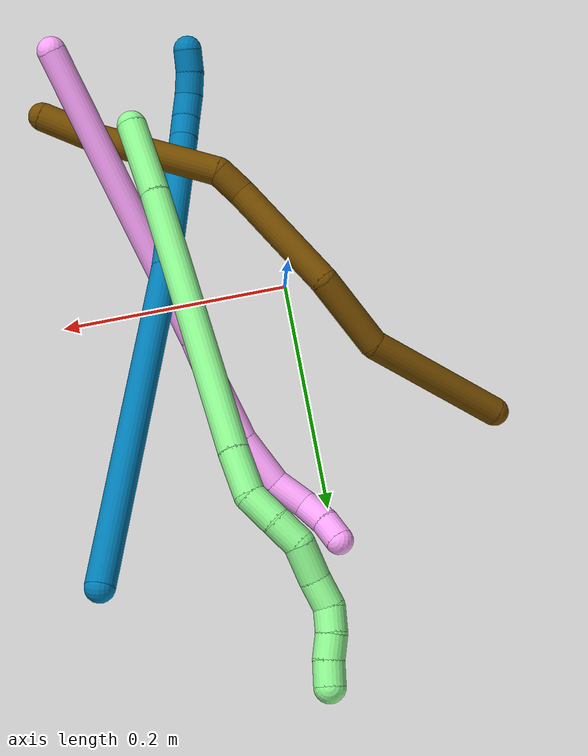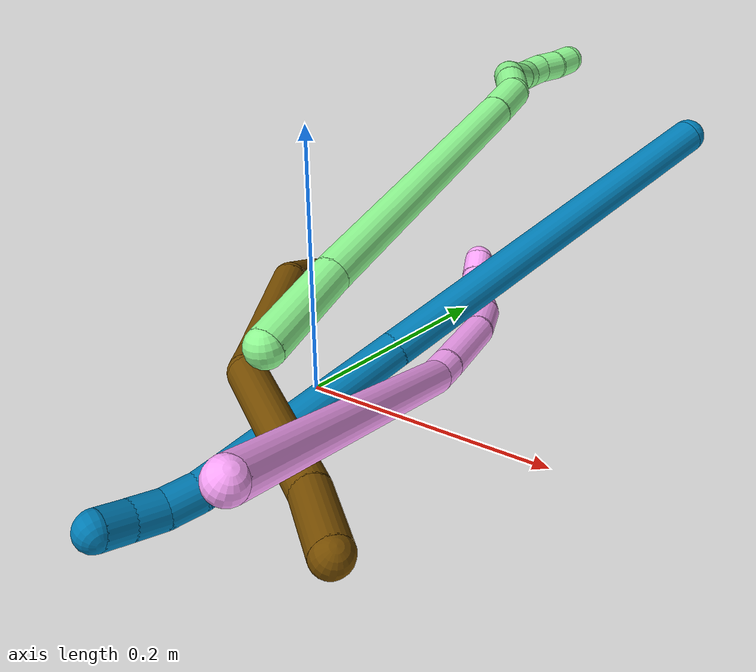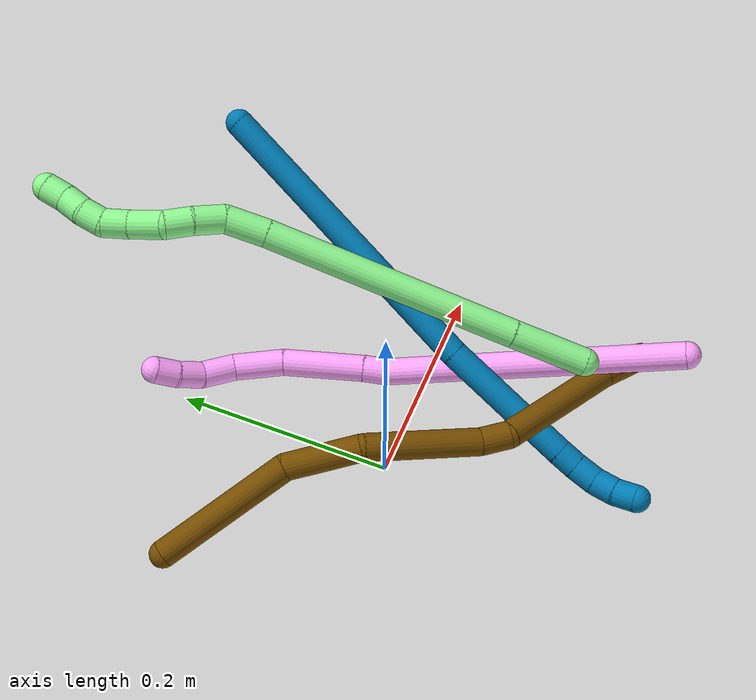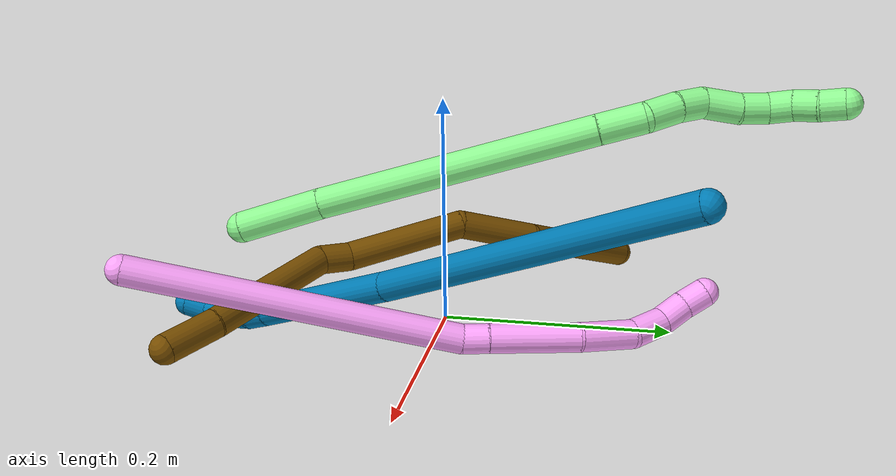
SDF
<sdf version="1.7">
 <world name="default">
  <model name="photoneo_s_sensor">
   <static>1</static>
   <pose>0 0 2 1.57079 1.57079 3.14159</pose>
   <link name="link">
    <inertial><mass>0.1</mass></inertial>
    <sensor name="sensor" type="depth">
     <update_rate>30</update_rate>
     <camera>
      <horizontal_fov>1.22</horizontal_fov>
      <image><width>1920</width><height>1200</height><format>B8G8R8</format></image>
      <clip><near>0.1</near><far>4</far></clip>
      <depth_camera><output>points</output></depth_camera>
     </camera>
     <plugin name="camera_plugin" filename="libgazebo_ros_depth_camera.so">
      <baseline>0.2</baseline>
      <alwaysOn>1</alwaysOn>
      <updateRate>0.0</updateRate>
      <cameraName>camera_ir</cameraName>
      <imageTopicName>/camera/color/image_raw</imageTopicName>
      <cameraInfoTopicName>/camera/color/camera_info</cameraInfoTopicName>
      <depthImageTopicName>/camera/depth/image_raw</depthImageTopicName>
      <depthImageCameraInfoTopicName>/camera/depth/camera_info</depthImageCameraInfoTopicName>
      <pointCloudTopicName>/camera/depth/points</pointCloudTopicName>
      <frameName>fr_optical</frameName>
      <pointCloudCutoff>0.1</pointCloudCutoff>
      <pointCloudCutoffMax>2.0</pointCloudCutoffMax>
      <distortionK1>0</distortionK1>
      <distortionK2>0</distortionK2>
      <distortionK3>0</distortionK3>
      <distortionT1>0</distortionT1>
      <distortionT2>0</distortionT2>
      <CxPrime>0</CxPrime>
      <Cx>0</Cx>
      <Cy>0</Cy>
      <focalLength>0</focalLength>
      <hackBaseline>0</hackBaseline>
     </plugin>
    </sensor>
   </link>
  </model>
  <model name="bin">
   <static>1</static>
   <link name="bottom">
    <collision name="collision-bottom">
     <pose>0 0 -0.01 0 -0 0</pose>
     <geometry><box><size>0.8 0.6 0.02</size></box></geometry>
     <surface>
      <friction><ode><mu>100</mu><mu2>100</mu2></ode></friction>
      <contact><collide_bitmask>65535</collide_bitmask></contact>
     </surface>
    </collision>
   </link>
   <link name="west_wall">
    <collision name="collision-west_wall">
     <pose>-0.41 0 0.1 0 -0 0</pose>
     <geometry><box><size>0.02 0.6 0.2</size></box></geometry>
     <surface>
      <friction><ode><mu>100</mu><mu2>100</mu2></ode></friction>
      <contact><collide_bitmask>65535</collide_bitmask></contact>
     </surface>
    </collision>
   </link>
   <link name="east_wall">
    <collision name="collision-east_wall">
     <pose>0.41 0 0.1 0 -0 0</pose>
     <geometry><box><size>0.02 0.6 0.2</size></box></geometry>
     <surface>
      <friction><ode><mu>100</mu><mu2>100</mu2></ode></friction>
      <contact><collide_bitmask>65535</collide_bitmask></contact>
     </surface>
    </collision>
   </link>
   <link name="south_wall">
    <collision name="collision-south_wall">
     <pose>0 -0.31 0.1 0 -0 0</pose>
     <geometry><box><size>0.8 0.02 0.2</size></box></geometry>
     <surface>
      <friction><ode><mu>100</mu><mu2>100</mu2></ode></friction>
      <contact><collide_bitmask>65535</collide_bitmask></contact>
     </surface>
    </collision>
   </link>
   <link name="north_wall">
    <collision name="collision-north_wall">
     <pose>0 0.31 0.1 0 -0 0</pose>
     <geometry><box><size>0.8 0.02 0.2</size></box></geometry>
     <surface>
      <friction><ode><mu>100</mu><mu2>100</mu2></ode></friction>
      <contact><collide_bitmask>65535</collide_bitmask></contact>
     </surface>
    </collision>
   </link>
  </model>
  <model name="4">
   <static>0</static>
   <link name="4">
    <collision name="collision-cylinder-e_1_1_4">
     <pose>-0.02738 0.111047 -0.077835 -2.18214 -0.199224 0.379577</pose>
     <geometry><cylinder><radius>0.0125</radius><length>0.276691</length></cylinder></geometry>
     <surface>
      <friction><ode><mu>1.16</mu><mu2>1.16</mu2><slip1>0</slip1><slip2>0</slip2></ode></friction>
      <contact><ode><kp>1e+06</kp><kd>1</kd><max_vel>0</max_vel><min_depth>0.001</min_depth></ode></contact>
     </surface>
    </collision>
    <visual name="visual-cylinder-e_1_1_4">
     <pose>-0.02738 0.111047 -0.077835 -2.18214 -0.199224 0.379577</pose>
     <geometry><cylinder><radius>0.0125</radius><length>0.276691</length></cylinder></geometry>
     <material><ambient>1 0.65098 0.996078 1</ambient></material>
    </visual>
    <collision name="collision-cylinder-e_2_4_5">
     <pose>-0.058345 0.231781 -0.159368 -1.93542 -0.332961 0.478646</pose>
     <geometry><cylinder><radius>0.0125</radius><length>0.021942</length></cylinder></geometry>
     <surface>
      <friction><ode><mu>1.16</mu><mu2>1.16</mu2><slip1>0</slip1><slip2>0</slip2></ode></friction>
      <contact><ode><kp>1e+06</kp><kd>1</kd><max_vel>0</max_vel><min_depth>0.001</min_depth></ode></contact>
     </surface>
    </collision>
    <visual name="visual-cylinder-e_2_4_5">
     <pose>-0.058345 0.231781 -0.159368 -1.93542 -0.332961 0.478646</pose>
     <geometry><cylinder><radius>0.0125</radius><length>0.021942</length></cylinder></geometry>
     <material><ambient>1 0.65098 0.996078 1</ambient></material>
    </visual>
    <collision name="collision-cylinder-e_3_5_6">
     <pose>-0.074972 0.273723 -0.178031 -2.00521 -0.351505 0.542606</pose>
     <geometry><cylinder><radius>0.0125</radius><length>0.075749</length></cylinder></geometry>
     <surface>
      <friction><ode><mu>1.16</mu><mu2>1.16</mu2><slip1>0</slip1><slip2>0</slip2></ode></friction>
      <contact><ode><kp>1e+06</kp><kd>1</kd><max_vel>0</max_vel><min_depth>0.001</min_depth></ode></contact>
     </surface>
    </collision>
    <visual name="visual-cylinder-e_3_5_6">
     <pose>-0.074972 0.273723 -0.178031 -2.00521 -0.351505 0.542606</pose>
     <geometry><cylinder><radius>0.0125</radius><length>0.075749</length></cylinder></geometry>
     <material><ambient>1 0.65098 0.996078 1</ambient></material>
    </visual>
    <collision name="collision-cylinder-e_4_6_7">
     <pose>-0.098681 0.323328 -0.204906 -2.17236 -0.469219 0.852299</pose>
     <geometry><cylinder><radius>0.0125</radius><length>0.047185</length></cylinder></geometry>
     <surface>
      <friction><ode><mu>1.16</mu><mu2>1.16</mu2><slip1>0</slip1><slip2>0</slip2></ode></friction>
      <contact><ode><kp>1e+06</kp><kd>1</kd><max_vel>0</max_vel><min_depth>0.001</min_depth></ode></contact>
     </surface>
    </collision>
    <visual name="visual-cylinder-e_4_6_7">
     <pose>-0.098681 0.323328 -0.204906 -2.17236 -0.469219 0.852299</pose>
     <geometry><cylinder><radius>0.0125</radius><length>0.047185</length></cylinder></geometry>
     <material><ambient>1 0.65098 0.996078 1</ambient></material>
    </visual>
    <collision name="collision-cylinder-e_5_7_8">
     <pose>-0.120857 0.349077 -0.223931 -2.27367 -0.807518 1.48957</pose>
     <geometry><cylinder><radius>0.0125</radius><length>0.031852</length></cylinder></geometry>
     <surface>
      <friction><ode><mu>1.16</mu><mu2>1.16</mu2><slip1>0</slip1><slip2>0</slip2></ode></friction>
      <contact><ode><kp>1e+06</kp><kd>1</kd><max_vel>0</max_vel><min_depth>0.001</min_depth></ode></contact>
     </surface>
    </collision>
    <visual name="visual-cylinder-e_5_7_8">
     <pose>-0.120857 0.349077 -0.223931 -2.27367 -0.807518 1.48957</pose>
     <geometry><cylinder><radius>0.0125</radius><length>0.031852</length></cylinder></geometry>
     <material><ambient>1 0.65098 0.996078 1</ambient></material>
    </visual>
    <collision name="collision-cylinder-e_6_8_9">
     <pose>-0.142379 0.364626 -0.232742 -1.8035 -0.937856 1.13965</pose>
     <geometry><cylinder><radius>0.0125</radius><length>0.024841</length></cylinder></geometry>
     <surface>
      <friction><ode><mu>1.16</mu><mu2>1.16</mu2><slip1>0</slip1><slip2>0</slip2></ode></friction>
      <contact><ode><kp>1e+06</kp><kd>1</kd><max_vel>0</max_vel><min_depth>0.001</min_depth></ode></contact>
     </surface>
    </collision>
    <visual name="visual-cylinder-e_6_8_9">
     <pose>-0.142379 0.364626 -0.232742 -1.8035 -0.937856 1.13965</pose>
     <geometry><cylinder><radius>0.0125</radius><length>0.024841</length></cylinder></geometry>
     <material><ambient>1 0.65098 0.996078 1</ambient></material>
    </visual>
    <collision name="collision-cylinder-e_7_9_2">
     <pose>-0.160056 0.379462 -0.23504 -1.64917 -0.782271 0.839112</pose>
     <geometry><cylinder><radius>0.0125</radius><length>0.021741</length></cylinder></geometry>
     <surface>
      <friction><ode><mu>1.16</mu><mu2>1.16</mu2><slip1>0</slip1><slip2>0</slip2></ode></friction>
      <contact><ode><kp>1e+06</kp><kd>1</kd><max_vel>0</max_vel><min_depth>0.001</min_depth></ode></contact>
     </surface>
    </collision>
    <visual name="visual-cylinder-e_7_9_2">
     <pose>-0.160056 0.379462 -0.23504 -1.64917 -0.782271 0.839112</pose>
     <geometry><cylinder><radius>0.0125</radius><length>0.021741</length></cylinder></geometry>
     <material><ambient>1 0.65098 0.996078 1</ambient></material>
    </visual>
    <collision name="collision-sphere-2">
     <pose>-0.167718 0.387149 -0.235644 0 -0 0</pose>
     <geometry><sphere><radius>0.0125</radius></sphere></geometry>
     <surface>
      <friction><ode><mu>1.16</mu><mu2>1.16</mu2><slip1>0</slip1><slip2>0</slip2></ode></friction>
      <contact><ode><kp>1e+06</kp><kd>1</kd><max_vel>0</max_vel><min_depth>0.001</min_depth></ode></contact>
     </surface>
    </collision>
    <visual name="visual-sphere-2">
     <pose>-0.167718 0.387149 -0.235644 0 -0 0</pose>
     <geometry><sphere><radius>0.0125</radius></sphere></geometry>
     <material><ambient>1 0.65098 0.996078 1</ambient></material>
    </visual>
    <collision name="collision-sphere-9">
     <pose>-0.152393 0.371775 -0.234436 0 -0 0</pose>
     <geometry><sphere><radius>0.0125</radius></sphere></geometry>
     <surface>
      <friction><ode><mu>1.16</mu><mu2>1.16</mu2><slip1>0</slip1><slip2>0</slip2></ode></friction>
      <contact><ode><kp>1e+06</kp><kd>1</kd><max_vel>0</max_vel><min_depth>0.001</min_depth></ode></contact>
     </surface>
    </collision>
    <visual name="visual-sphere-9">
     <pose>-0.152393 0.371775 -0.234436 0 -0 0</pose>
     <geometry><sphere><radius>0.0125</radius></sphere></geometry>
     <material><ambient>1 0.65098 0.996078 1</ambient></material>
    </visual>
    <collision name="collision-sphere-4">
     <pose>-0.05476 0.222094 -0.155671 0 -0 0</pose>
     <geometry><sphere><radius>0.0125</radius></sphere></geometry>
     <surface>
      <friction><ode><mu>1.16</mu><mu2>1.16</mu2><slip1>0</slip1><slip2>0</slip2></ode></friction>
      <contact><ode><kp>1e+06</kp><kd>1</kd><max_vel>0</max_vel><min_depth>0.001</min_depth></ode></contact>
     </surface>
    </collision>
    <visual name="visual-sphere-4">
     <pose>-0.05476 0.222094 -0.155671 0 -0 0</pose>
     <geometry><sphere><radius>0.0125</radius></sphere></geometry>
     <material><ambient>1 0.65098 0.996078 1</ambient></material>
    </visual>
    <collision name="collision-sphere-1">
     <geometry><sphere><radius>0.0125</radius></sphere></geometry>
     <surface>
      <friction><ode><mu>1.16</mu><mu2>1.16</mu2><slip1>0</slip1><slip2>0</slip2></ode></friction>
      <contact><ode><kp>1e+06</kp><kd>1</kd><max_vel>0</max_vel><min_depth>0.001</min_depth></ode></contact>
     </surface>
    </collision>
    <visual name="visual-sphere-1">
     <geometry><sphere><radius>0.0125</radius></sphere></geometry>
     <material><ambient>1 0.65098 0.996078 1</ambient></material>
    </visual>
    <collision name="collision-sphere-8">
     <pose>-0.132364 0.357477 -0.231048 0 -0 0</pose>
     <geometry><sphere><radius>0.0125</radius></sphere></geometry>
     <surface>
      <friction><ode><mu>1.16</mu><mu2>1.16</mu2><slip1>0</slip1><slip2>0</slip2></ode></friction>
      <contact><ode><kp>1e+06</kp><kd>1</kd><max_vel>0</max_vel><min_depth>0.001</min_depth></ode></contact>
     </surface>
    </collision>
    <visual name="visual-sphere-8">
     <pose>-0.132364 0.357477 -0.231048 0 -0 0</pose>
     <geometry><sphere><radius>0.0125</radius></sphere></geometry>
     <material><ambient>1 0.65098 0.996078 1</ambient></material>
    </visual>
    <collision name="collision-sphere-5">
     <pose>-0.061931 0.241467 -0.163065 0 -0 0</pose>
     <geometry><sphere><radius>0.0125</radius></sphere></geometry>
     <surface>
      <friction><ode><mu>1.16</mu><mu2>1.16</mu2><slip1>0</slip1><slip2>0</slip2></ode></friction>
      <contact><ode><kp>1e+06</kp><kd>1</kd><max_vel>0</max_vel><min_depth>0.001</min_depth></ode></contact>
     </surface>
    </collision>
    <visual name="visual-sphere-5">
     <pose>-0.061931 0.241467 -0.163065 0 -0 0</pose>
     <geometry><sphere><radius>0.0125</radius></sphere></geometry>
     <material><ambient>1 0.65098 0.996078 1</ambient></material>
    </visual>
    <collision name="collision-sphere-6">
     <pose>-0.088012 0.30598 -0.192997 0 -0 0</pose>
     <geometry><sphere><radius>0.0125</radius></sphere></geometry>
     <surface>
      <friction><ode><mu>1.16</mu><mu2>1.16</mu2><slip1>0</slip1><slip2>0</slip2></ode></friction>
      <contact><ode><kp>1e+06</kp><kd>1</kd><max_vel>0</max_vel><min_depth>0.001</min_depth></ode></contact>
     </surface>
    </collision>
    <visual name="visual-sphere-6">
     <pose>-0.088012 0.30598 -0.192997 0 -0 0</pose>
     <geometry><sphere><radius>0.0125</radius></sphere></geometry>
     <material><ambient>1 0.65098 0.996078 1</ambient></material>
    </visual>
    <collision name="collision-sphere-7">
     <pose>-0.109349 0.340677 -0.216815 0 -0 0</pose>
     <geometry><sphere><radius>0.0125</radius></sphere></geometry>
     <surface>
      <friction><ode><mu>1.16</mu><mu2>1.16</mu2><slip1>0</slip1><slip2>0</slip2></ode></friction>
      <contact><ode><kp>1e+06</kp><kd>1</kd><max_vel>0</max_vel><min_depth>0.001</min_depth></ode></contact>
     </surface>
    </collision>
    <visual name="visual-sphere-7">
     <pose>-0.109349 0.340677 -0.216815 0 -0 0</pose>
     <geometry><sphere><radius>0.0125</radius></sphere></geometry>
     <material><ambient>1 0.65098 0.996078 1</ambient></material>
    </visual>
    <inertial>
     <pose>-0.060114 0.200456 -0.132423 0 -0 0</pose>
     <mass>0.5</mass>
     <inertia>
      <ixx>0.002321</ixx>
      <ixy>0</ixy>
      <ixz>0</ixz>
      <iyy>-0.000138</iyy>
      <iyz>0</iyz>
      <izz>-0.001115</izz>
     </inertia>
    </inertial>
   </link>
   <pose>0.15885 -0.225127 0.090875 0.115509 0.638384 -0.197308</pose>
  </model>
  <model name="9">
   <static>0</static>
   <link name="9">
    <collision name="collision-cylinder-e_1_1_4">
     <pose>0.027849 -0.141025 0.005158 1.53424 0.194837 0.187883</pose>
     <geometry><cylinder><radius>0.0125</radius><length>0.287682</length></cylinder></geometry>
     <surface>
      <friction><ode><mu>1.16</mu><mu2>1.16</mu2><slip1>0</slip1><slip2>0</slip2></ode></friction>
      <contact><ode><kp>1e+06</kp><kd>1</kd><max_vel>0</max_vel><min_depth>0.001</min_depth></ode></contact>
     </surface>
    </collision>
    <visual name="visual-cylinder-e_1_1_4">
     <pose>0.027849 -0.141025 0.005158 1.53424 0.194837 0.187883</pose>
     <geometry><cylinder><radius>0.0125</radius><length>0.287682</length></cylinder></geometry>
     <material><ambient>0 0.490196 0.709804 1</ambient></material>
    </visual>
    <collision name="collision-cylinder-e_2_4_5">
     <pose>0.064648 -0.34578 0.015476 1.49002 0.13909 0.128316</pose>
     <geometry><cylinder><radius>0.0125</radius><length>0.129124</length></cylinder></geometry>
     <surface>
      <friction><ode><mu>1.16</mu><mu2>1.16</mu2><slip1>0</slip1><slip2>0</slip2></ode></friction>
      <contact><ode><kp>1e+06</kp><kd>1</kd><max_vel>0</max_vel><min_depth>0.001</min_depth></ode></contact>
     </surface>
    </collision>
    <visual name="visual-cylinder-e_2_4_5">
     <pose>0.064648 -0.34578 0.015476 1.49002 0.13909 0.128316</pose>
     <geometry><cylinder><radius>0.0125</radius><length>0.129124</length></cylinder></geometry>
     <material><ambient>0 0.490196 0.709804 1</ambient></material>
    </visual>
    <collision name="collision-cylinder-e_3_5_6">
     <pose>0.074688 -0.419486 0.021568 1.47753 0.108272 0.098633</pose>
     <geometry><cylinder><radius>0.0125</radius><length>0.020157</length></cylinder></geometry>
     <surface>
      <friction><ode><mu>1.16</mu><mu2>1.16</mu2><slip1>0</slip1><slip2>0</slip2></ode></friction>
      <contact><ode><kp>1e+06</kp><kd>1</kd><max_vel>0</max_vel><min_depth>0.001</min_depth></ode></contact>
     </surface>
    </collision>
    <visual name="visual-cylinder-e_3_5_6">
     <pose>0.074688 -0.419486 0.021568 1.47753 0.108272 0.098633</pose>
     <geometry><cylinder><radius>0.0125</radius><length>0.020157</length></cylinder></geometry>
     <material><ambient>0 0.490196 0.709804 1</ambient></material>
    </visual>
    <collision name="collision-cylinder-e_4_6_7">
     <pose>0.075077 -0.440481 0.022622 1.55977 -0.063429 -0.062734</pose>
     <geometry><cylinder><radius>0.0125</radius><length>0.022085</length></cylinder></geometry>
     <surface>
      <friction><ode><mu>1.16</mu><mu2>1.16</mu2><slip1>0</slip1><slip2>0</slip2></ode></friction>
      <contact><ode><kp>1e+06</kp><kd>1</kd><max_vel>0</max_vel><min_depth>0.001</min_depth></ode></contact>
     </surface>
    </collision>
    <visual name="visual-cylinder-e_4_6_7">
     <pose>0.075077 -0.440481 0.022622 1.55977 -0.063429 -0.062734</pose>
     <geometry><cylinder><radius>0.0125</radius><length>0.022085</length></cylinder></geometry>
     <material><ambient>0 0.490196 0.709804 1</ambient></material>
    </visual>
    <collision name="collision-cylinder-e_5_7_8">
     <pose>0.071284 -0.46143 0.022785 1.56665 -0.301969 -0.300738</pose>
     <geometry><cylinder><radius>0.0125</radius><length>0.0208</length></cylinder></geometry>
     <surface>
      <friction><ode><mu>1.16</mu><mu2>1.16</mu2><slip1>0</slip1><slip2>0</slip2></ode></friction>
      <contact><ode><kp>1e+06</kp><kd>1</kd><max_vel>0</max_vel><min_depth>0.001</min_depth></ode></contact>
     </surface>
    </collision>
    <visual name="visual-cylinder-e_5_7_8">
     <pose>0.071284 -0.46143 0.022785 1.56665 -0.301969 -0.300738</pose>
     <geometry><cylinder><radius>0.0125</radius><length>0.0208</length></cylinder></geometry>
     <material><ambient>0 0.490196 0.709804 1</ambient></material>
    </visual>
    <collision name="collision-cylinder-e_6_8_2">
     <pose>0.063796 -0.480347 0.024027 1.43796 -0.451426 -0.396681</pose>
     <geometry><cylinder><radius>0.0125</radius><length>0.020153</length></cylinder></geometry>
     <surface>
      <friction><ode><mu>1.16</mu><mu2>1.16</mu2><slip1>0</slip1><slip2>0</slip2></ode></friction>
      <contact><ode><kp>1e+06</kp><kd>1</kd><max_vel>0</max_vel><min_depth>0.001</min_depth></ode></contact>
     </surface>
    </collision>
    <visual name="visual-cylinder-e_6_8_2">
     <pose>0.063796 -0.480347 0.024027 1.43796 -0.451426 -0.396681</pose>
     <geometry><cylinder><radius>0.0125</radius><length>0.020153</length></cylinder></geometry>
     <material><ambient>0 0.490196 0.709804 1</ambient></material>
    </visual>
    <collision name="collision-sphere-2">
     <pose>0.0594 -0.489334 0.025228 0 -0 0</pose>
     <geometry><sphere><radius>0.0125</radius></sphere></geometry>
     <surface>
      <friction><ode><mu>1.16</mu><mu2>1.16</mu2><slip1>0</slip1><slip2>0</slip2></ode></friction>
      <contact><ode><kp>1e+06</kp><kd>1</kd><max_vel>0</max_vel><min_depth>0.001</min_depth></ode></contact>
     </surface>
    </collision>
    <visual name="visual-sphere-2">
     <pose>0.0594 -0.489334 0.025228 0 -0 0</pose>
     <geometry><sphere><radius>0.0125</radius></sphere></geometry>
     <material><ambient>0 0.490196 0.709804 1</ambient></material>
    </visual>
    <collision name="collision-sphere-4">
     <pose>0.055697 -0.28205 0.010317 0 -0 0</pose>
     <geometry><sphere><radius>0.0125</radius></sphere></geometry>
     <surface>
      <friction><ode><mu>1.16</mu><mu2>1.16</mu2><slip1>0</slip1><slip2>0</slip2></ode></friction>
      <contact><ode><kp>1e+06</kp><kd>1</kd><max_vel>0</max_vel><min_depth>0.001</min_depth></ode></contact>
     </surface>
    </collision>
    <visual name="visual-sphere-4">
     <pose>0.055697 -0.28205 0.010317 0 -0 0</pose>
     <geometry><sphere><radius>0.0125</radius></sphere></geometry>
     <material><ambient>0 0.490196 0.709804 1</ambient></material>
    </visual>
    <collision name="collision-sphere-1">
     <geometry><sphere><radius>0.0125</radius></sphere></geometry>
     <surface>
      <friction><ode><mu>1.16</mu><mu2>1.16</mu2><slip1>0</slip1><slip2>0</slip2></ode></friction>
      <contact><ode><kp>1e+06</kp><kd>1</kd><max_vel>0</max_vel><min_depth>0.001</min_depth></ode></contact>
     </surface>
    </collision>
    <visual name="visual-sphere-1">
     <geometry><sphere><radius>0.0125</radius></sphere></geometry>
     <material><ambient>0 0.490196 0.709804 1</ambient></material>
    </visual>
    <collision name="collision-sphere-8">
     <pose>0.068191 -0.47136 0.022826 0 -0 0</pose>
     <geometry><sphere><radius>0.0125</radius></sphere></geometry>
     <surface>
      <friction><ode><mu>1.16</mu><mu2>1.16</mu2><slip1>0</slip1><slip2>0</slip2></ode></friction>
      <contact><ode><kp>1e+06</kp><kd>1</kd><max_vel>0</max_vel><min_depth>0.001</min_depth></ode></contact>
     </surface>
    </collision>
    <visual name="visual-sphere-8">
     <pose>0.068191 -0.47136 0.022826 0 -0 0</pose>
     <geometry><sphere><radius>0.0125</radius></sphere></geometry>
     <material><ambient>0 0.490196 0.709804 1</ambient></material>
    </visual>
    <collision name="collision-sphere-5">
     <pose>0.073599 -0.40951 0.020635 0 -0 0</pose>
     <geometry><sphere><radius>0.0125</radius></sphere></geometry>
     <surface>
      <friction><ode><mu>1.16</mu><mu2>1.16</mu2><slip1>0</slip1><slip2>0</slip2></ode></friction>
      <contact><ode><kp>1e+06</kp><kd>1</kd><max_vel>0</max_vel><min_depth>0.001</min_depth></ode></contact>
     </surface>
    </collision>
    <visual name="visual-sphere-5">
     <pose>0.073599 -0.40951 0.020635 0 -0 0</pose>
     <geometry><sphere><radius>0.0125</radius></sphere></geometry>
     <material><ambient>0 0.490196 0.709804 1</ambient></material>
    </visual>
    <collision name="collision-sphere-6">
     <pose>0.075777 -0.429462 0.022501 0 -0 0</pose>
     <geometry><sphere><radius>0.0125</radius></sphere></geometry>
     <surface>
      <friction><ode><mu>1.16</mu><mu2>1.16</mu2><slip1>0</slip1><slip2>0</slip2></ode></friction>
      <contact><ode><kp>1e+06</kp><kd>1</kd><max_vel>0</max_vel><min_depth>0.001</min_depth></ode></contact>
     </surface>
    </collision>
    <visual name="visual-sphere-6">
     <pose>0.075777 -0.429462 0.022501 0 -0 0</pose>
     <geometry><sphere><radius>0.0125</radius></sphere></geometry>
     <material><ambient>0 0.490196 0.709804 1</ambient></material>
    </visual>
    <collision name="collision-sphere-7">
     <pose>0.074377 -0.451501 0.022744 0 -0 0</pose>
     <geometry><sphere><radius>0.0125</radius></sphere></geometry>
     <surface>
      <friction><ode><mu>1.16</mu><mu2>1.16</mu2><slip1>0</slip1><slip2>0</slip2></ode></friction>
      <contact><ode><kp>1e+06</kp><kd>1</kd><max_vel>0</max_vel><min_depth>0.001</min_depth></ode></contact>
     </surface>
    </collision>
    <visual name="visual-sphere-7">
     <pose>0.074377 -0.451501 0.022744 0 -0 0</pose>
     <geometry><sphere><radius>0.0125</radius></sphere></geometry>
     <material><ambient>0 0.490196 0.709804 1</ambient></material>
    </visual>
    <inertial>
     <pose>0.044582 -0.24536 0.010749 0 -0 0</pose>
     <mass>0.5</mass>
     <inertia>
      <ixx>0.002503</ixx>
      <ixy>0</ixy>
      <ixz>0</ixz>
      <iyy>0.000512</iyy>
      <iyz>0</iyz>
      <izz>0.001735</izz>
     </inertia>
    </inertial>
   </link>
   <pose>0.190958 0.220507 0.178585 2.52763 1.21559 2.22577</pose>
  </model>
  <model name="12">
   <static>0</static>
   <link name="12">
    <collision name="collision-cylinder-e_1_1_4">
     <pose>0.000524 0.020255 0.011421 -1.05736 0.022538 -0.013166</pose>
     <geometry><cylinder><radius>0.0125</radius><length>0.046517</length></cylinder></geometry>
     <surface>
      <friction><ode><mu>1.16</mu><mu2>1.16</mu2><slip1>0</slip1><slip2>0</slip2></ode></friction>
      <contact><ode><kp>1e+06</kp><kd>1</kd><max_vel>0</max_vel><min_depth>0.001</min_depth></ode></contact>
     </surface>
    </collision>
    <visual name="visual-cylinder-e_1_1_4">
     <pose>0.000524 0.020255 0.011421 -1.05736 0.022538 -0.013166</pose>
     <geometry><cylinder><radius>0.0125</radius><length>0.046517</length></cylinder></geometry>
     <material><ambient>0.466667 0.301961 0 1</ambient></material>
    </visual>
    <collision name="collision-cylinder-e_2_4_5">
     <pose>0.009368 0.091777 0.052681 -1.04371 0.139346 -0.080214</pose>
     <geometry><cylinder><radius>0.0125</radius><length>0.119798</length></cylinder></geometry>
     <surface>
      <friction><ode><mu>1.16</mu><mu2>1.16</mu2><slip1>0</slip1><slip2>0</slip2></ode></friction>
      <contact><ode><kp>1e+06</kp><kd>1</kd><max_vel>0</max_vel><min_depth>0.001</min_depth></ode></contact>
     </surface>
    </collision>
    <visual name="visual-cylinder-e_2_4_5">
     <pose>0.009368 0.091777 0.052681 -1.04371 0.139346 -0.080214</pose>
     <geometry><cylinder><radius>0.0125</radius><length>0.119798</length></cylinder></geometry>
     <material><ambient>0.466667 0.301961 0 1</ambient></material>
    </visual>
    <collision name="collision-cylinder-e_3_5_6">
     <pose>0.01327 0.152849 0.09044 -0.891304 -0.337095 0.162217</pose>
     <geometry><cylinder><radius>0.0125</radius><length>0.026713</length></cylinder></geometry>
     <surface>
      <friction><ode><mu>1.16</mu><mu2>1.16</mu2><slip1>0</slip1><slip2>0</slip2></ode></friction>
      <contact><ode><kp>1e+06</kp><kd>1</kd><max_vel>0</max_vel><min_depth>0.001</min_depth></ode></contact>
     </surface>
    </collision>
    <visual name="visual-cylinder-e_3_5_6">
     <pose>0.01327 0.152849 0.09044 -0.891304 -0.337095 0.162217</pose>
     <geometry><cylinder><radius>0.0125</radius><length>0.026713</length></cylinder></geometry>
     <material><ambient>0.466667 0.301961 0 1</ambient></material>
    </visual>
    <collision name="collision-cylinder-e_4_6_7">
     <pose>-0.011149 0.206741 0.11916 -1.12999 -0.389367 0.248706</pose>
     <geometry><cylinder><radius>0.0125</radius><length>0.10538</length></cylinder></geometry>
     <surface>
      <friction><ode><mu>1.16</mu><mu2>1.16</mu2><slip1>0</slip1><slip2>0</slip2></ode></friction>
      <contact><ode><kp>1e+06</kp><kd>1</kd><max_vel>0</max_vel><min_depth>0.001</min_depth></ode></contact>
     </surface>
    </collision>
    <visual name="visual-cylinder-e_4_6_7">
     <pose>-0.011149 0.206741 0.11916 -1.12999 -0.389367 0.248706</pose>
     <geometry><cylinder><radius>0.0125</radius><length>0.10538</length></cylinder></geometry>
     <material><ambient>0.466667 0.301961 0 1</ambient></material>
    </visual>
    <collision name="collision-cylinder-e_5_7_8">
     <pose>-0.047592 0.269706 0.165142 -0.643269 -0.481411 0.163216</pose>
     <geometry><cylinder><radius>0.0125</radius><length>0.071019</length></cylinder></geometry>
     <surface>
      <friction><ode><mu>1.16</mu><mu2>1.16</mu2><slip1>0</slip1><slip2>0</slip2></ode></friction>
      <contact><ode><kp>1e+06</kp><kd>1</kd><max_vel>0</max_vel><min_depth>0.001</min_depth></ode></contact>
     </surface>
    </collision>
    <visual name="visual-cylinder-e_5_7_8">
     <pose>-0.047592 0.269706 0.165142 -0.643269 -0.481411 0.163216</pose>
     <geometry><cylinder><radius>0.0125</radius><length>0.071019</length></cylinder></geometry>
     <material><ambient>0.466667 0.301961 0 1</ambient></material>
    </visual>
    <collision name="collision-cylinder-e_6_8_2">
     <pose>-0.07028 0.322895 0.245516 -0.556211 -0.095811 0.027374</pose>
     <geometry><cylinder><radius>0.0125</radius><length>0.130572</length></cylinder></geometry>
     <surface>
      <friction><ode><mu>1.16</mu><mu2>1.16</mu2><slip1>0</slip1><slip2>0</slip2></ode></friction>
      <contact><ode><kp>1e+06</kp><kd>1</kd><max_vel>0</max_vel><min_depth>0.001</min_depth></ode></contact>
     </surface>
    </collision>
    <visual name="visual-cylinder-e_6_8_2">
     <pose>-0.07028 0.322895 0.245516 -0.556211 -0.095811 0.027374</pose>
     <geometry><cylinder><radius>0.0125</radius><length>0.130572</length></cylinder></geometry>
     <material><ambient>0.466667 0.301961 0 1</ambient></material>
    </visual>
    <collision name="collision-sphere-2">
     <pose>-0.076525 0.357206 0.300706 0 -0 0</pose>
     <geometry><sphere><radius>0.0125</radius></sphere></geometry>
     <surface>
      <friction><ode><mu>1.16</mu><mu2>1.16</mu2><slip1>0</slip1><slip2>0</slip2></ode></friction>
      <contact><ode><kp>1e+06</kp><kd>1</kd><max_vel>0</max_vel><min_depth>0.001</min_depth></ode></contact>
     </surface>
    </collision>
    <visual name="visual-sphere-2">
     <pose>-0.076525 0.357206 0.300706 0 -0 0</pose>
     <geometry><sphere><radius>0.0125</radius></sphere></geometry>
     <material><ambient>0.466667 0.301961 0 1</ambient></material>
    </visual>
    <collision name="collision-sphere-4">
     <pose>0.001048 0.040509 0.022842 0 -0 0</pose>
     <geometry><sphere><radius>0.0125</radius></sphere></geometry>
     <surface>
      <friction><ode><mu>1.16</mu><mu2>1.16</mu2><slip1>0</slip1><slip2>0</slip2></ode></friction>
      <contact><ode><kp>1e+06</kp><kd>1</kd><max_vel>0</max_vel><min_depth>0.001</min_depth></ode></contact>
     </surface>
    </collision>
    <visual name="visual-sphere-4">
     <pose>0.001048 0.040509 0.022842 0 -0 0</pose>
     <geometry><sphere><radius>0.0125</radius></sphere></geometry>
     <material><ambient>0.466667 0.301961 0 1</ambient></material>
    </visual>
    <collision name="collision-sphere-1">
     <geometry><sphere><radius>0.0125</radius></sphere></geometry>
     <surface>
      <friction><ode><mu>1.16</mu><mu2>1.16</mu2><slip1>0</slip1><slip2>0</slip2></ode></friction>
      <contact><ode><kp>1e+06</kp><kd>1</kd><max_vel>0</max_vel><min_depth>0.001</min_depth></ode></contact>
     </surface>
    </collision>
    <visual name="visual-sphere-1">
     <geometry><sphere><radius>0.0125</radius></sphere></geometry>
     <material><ambient>0.466667 0.301961 0 1</ambient></material>
    </visual>
    <collision name="collision-sphere-8">
     <pose>-0.064034 0.288584 0.190325 0 -0 0</pose>
     <geometry><sphere><radius>0.0125</radius></sphere></geometry>
     <surface>
      <friction><ode><mu>1.16</mu><mu2>1.16</mu2><slip1>0</slip1><slip2>0</slip2></ode></friction>
      <contact><ode><kp>1e+06</kp><kd>1</kd><max_vel>0</max_vel><min_depth>0.001</min_depth></ode></contact>
     </surface>
    </collision>
    <visual name="visual-sphere-8">
     <pose>-0.064034 0.288584 0.190325 0 -0 0</pose>
     <geometry><sphere><radius>0.0125</radius></sphere></geometry>
     <material><ambient>0.466667 0.301961 0 1</ambient></material>
    </visual>
    <collision name="collision-sphere-5">
     <pose>0.017688 0.143044 0.082519 0 -0 0</pose>
     <geometry><sphere><radius>0.0125</radius></sphere></geometry>
     <surface>
      <friction><ode><mu>1.16</mu><mu2>1.16</mu2><slip1>0</slip1><slip2>0</slip2></ode></friction>
      <contact><ode><kp>1e+06</kp><kd>1</kd><max_vel>0</max_vel><min_depth>0.001</min_depth></ode></contact>
     </surface>
    </collision>
    <visual name="visual-sphere-5">
     <pose>0.017688 0.143044 0.082519 0 -0 0</pose>
     <geometry><sphere><radius>0.0125</radius></sphere></geometry>
     <material><ambient>0.466667 0.301961 0 1</ambient></material>
    </visual>
    <collision name="collision-sphere-6">
     <pose>0.008852 0.162655 0.098361 0 -0 0</pose>
     <geometry><sphere><radius>0.0125</radius></sphere></geometry>
     <surface>
      <friction><ode><mu>1.16</mu><mu2>1.16</mu2><slip1>0</slip1><slip2>0</slip2></ode></friction>
      <contact><ode><kp>1e+06</kp><kd>1</kd><max_vel>0</max_vel><min_depth>0.001</min_depth></ode></contact>
     </surface>
    </collision>
    <visual name="visual-sphere-6">
     <pose>0.008852 0.162655 0.098361 0 -0 0</pose>
     <geometry><sphere><radius>0.0125</radius></sphere></geometry>
     <material><ambient>0.466667 0.301961 0 1</ambient></material>
    </visual>
    <collision name="collision-sphere-7">
     <pose>-0.03115 0.250827 0.139958 0 -0 0</pose>
     <geometry><sphere><radius>0.0125</radius></sphere></geometry>
     <surface>
      <friction><ode><mu>1.16</mu><mu2>1.16</mu2><slip1>0</slip1><slip2>0</slip2></ode></friction>
      <contact><ode><kp>1e+06</kp><kd>1</kd><max_vel>0</max_vel><min_depth>0.001</min_depth></ode></contact>
     </surface>
    </collision>
    <visual name="visual-sphere-7">
     <pose>-0.03115 0.250827 0.139958 0 -0 0</pose>
     <geometry><sphere><radius>0.0125</radius></sphere></geometry>
     <material><ambient>0.466667 0.301961 0 1</ambient></material>
    </visual>
    <inertial>
     <pose>-0.024461 0.198243 0.131202 0 -0 0</pose>
     <mass>0.5</mass>
     <inertia>
      <ixx>0.000484</ixx>
      <ixy>0</ixy>
      <ixz>0</ixz>
      <iyy>0.000372</iyy>
      <iyz>0</iyz>
      <izz>-0.000265</izz>
     </inertia>
    </inertial>
   </link>
   <pose>0.18118 -0.183567 0.036577 2.47255 -0.121263 -2.17839</pose>
  </model>
  <model name="13">
   <static>0</static>
   <link name="13">
    <collision name="collision-cylinder-e_1_1_4">
     <pose>0.002126 0.033493 0.004769 -1.42938 0.06277 -0.054471</pose>
     <geometry><cylinder><radius>0.0125</radius><length>0.067796</length></cylinder></geometry>
     <surface>
      <friction><ode><mu>1.16</mu><mu2>1.16</mu2><slip1>0</slip1><slip2>0</slip2></ode></friction>
      <contact><ode><kp>1e+06</kp><kd>1</kd><max_vel>0</max_vel><min_depth>0.001</min_depth></ode></contact>
     </surface>
    </collision>
    <visual name="visual-cylinder-e_1_1_4">
     <pose>0.002126 0.033493 0.004769 -1.42938 0.06277 -0.054471</pose>
     <geometry><cylinder><radius>0.0125</radius><length>0.067796</length></cylinder></geometry>
     <material><ambient>0.564706 0.984314 0.572549 1</ambient></material>
    </visual>
    <collision name="collision-cylinder-e_2_4_5">
     <pose>0.01489 0.180003 0.022769 -1.45424 0.093214 -0.082949</pose>
     <geometry><cylinder><radius>0.0125</radius><length>0.228568</length></cylinder></geometry>
     <surface>
      <friction><ode><mu>1.16</mu><mu2>1.16</mu2><slip1>0</slip1><slip2>0</slip2></ode></friction>
      <contact><ode><kp>1e+06</kp><kd>1</kd><max_vel>0</max_vel><min_depth>0.001</min_depth></ode></contact>
     </surface>
    </collision>
    <visual name="visual-cylinder-e_2_4_5">
     <pose>0.01489 0.180003 0.022769 -1.45424 0.093214 -0.082949</pose>
     <geometry><cylinder><radius>0.0125</radius><length>0.228568</length></cylinder></geometry>
     <material><ambient>0.564706 0.984314 0.572549 1</ambient></material>
    </visual>
    <collision name="collision-cylinder-e_3_5_6">
     <pose>0.026343 0.311682 0.037764 -1.47666 0.043474 -0.039564</pose>
     <geometry><cylinder><radius>0.0125</radius><length>0.037529</length></cylinder></geometry>
     <surface>
      <friction><ode><mu>1.16</mu><mu2>1.16</mu2><slip1>0</slip1><slip2>0</slip2></ode></friction>
      <contact><ode><kp>1e+06</kp><kd>1</kd><max_vel>0</max_vel><min_depth>0.001</min_depth></ode></contact>
     </surface>
    </collision>
    <visual name="visual-cylinder-e_3_5_6">
     <pose>0.026343 0.311682 0.037764 -1.47666 0.043474 -0.039564</pose>
     <geometry><cylinder><radius>0.0125</radius><length>0.037529</length></cylinder></geometry>
     <material><ambient>0.564706 0.984314 0.572549 1</ambient></material>
    </visual>
    <collision name="collision-cylinder-e_4_6_7">
     <pose>0.021675 0.343311 0.039852 -1.54567 -0.399993 0.390319</pose>
     <geometry><cylinder><radius>0.0125</radius><length>0.028161</length></cylinder></geometry>
     <surface>
      <friction><ode><mu>1.16</mu><mu2>1.16</mu2><slip1>0</slip1><slip2>0</slip2></ode></friction>
      <contact><ode><kp>1e+06</kp><kd>1</kd><max_vel>0</max_vel><min_depth>0.001</min_depth></ode></contact>
     </surface>
    </collision>
    <visual name="visual-cylinder-e_4_6_7">
     <pose>0.021675 0.343311 0.039852 -1.54567 -0.399993 0.390319</pose>
     <geometry><cylinder><radius>0.0125</radius><length>0.028161</length></cylinder></geometry>
     <material><ambient>0.564706 0.984314 0.572549 1</ambient></material>
    </visual>
    <collision name="collision-cylinder-e_5_7_8">
     <pose>0.011403 0.367332 0.038981 -1.67864 -0.40668 0.451598</pose>
     <geometry><cylinder><radius>0.0125</radius><length>0.024216</length></cylinder></geometry>
     <surface>
      <friction><ode><mu>1.16</mu><mu2>1.16</mu2><slip1>0</slip1><slip2>0</slip2></ode></friction>
      <contact><ode><kp>1e+06</kp><kd>1</kd><max_vel>0</max_vel><min_depth>0.001</min_depth></ode></contact>
     </surface>
    </collision>
    <visual name="visual-cylinder-e_5_7_8">
     <pose>0.011403 0.367332 0.038981 -1.67864 -0.40668 0.451598</pose>
     <geometry><cylinder><radius>0.0125</radius><length>0.024216</length></cylinder></geometry>
     <material><ambient>0.564706 0.984314 0.572549 1</ambient></material>
    </visual>
    <collision name="collision-cylinder-e_6_8_9">
     <pose>0.006396 0.392604 0.032692 -1.91475 -0.014384 0.020431</pose>
     <geometry><cylinder><radius>0.0125</radius><length>0.030204</length></cylinder></geometry>
     <surface>
      <friction><ode><mu>1.16</mu><mu2>1.16</mu2><slip1>0</slip1><slip2>0</slip2></ode></friction>
      <contact><ode><kp>1e+06</kp><kd>1</kd><max_vel>0</max_vel><min_depth>0.001</min_depth></ode></contact>
     </surface>
    </collision>
    <visual name="visual-cylinder-e_6_8_9">
     <pose>0.006396 0.392604 0.032692 -1.91475 -0.014384 0.020431</pose>
     <geometry><cylinder><radius>0.0125</radius><length>0.030204</length></cylinder></geometry>
     <material><ambient>0.564706 0.984314 0.572549 1</ambient></material>
    </visual>
    <collision name="collision-cylinder-e_7_9_10">
     <pose>0.005171 0.418311 0.025484 -1.75295 -0.086067 0.10334</pose>
     <geometry><cylinder><radius>0.0125</radius><length>0.023456</length></cylinder></geometry>
     <surface>
      <friction><ode><mu>1.16</mu><mu2>1.16</mu2><slip1>0</slip1><slip2>0</slip2></ode></friction>
      <contact><ode><kp>1e+06</kp><kd>1</kd><max_vel>0</max_vel><min_depth>0.001</min_depth></ode></contact>
     </surface>
    </collision>
    <visual name="visual-cylinder-e_7_9_10">
     <pose>0.005171 0.418311 0.025484 -1.75295 -0.086067 0.10334</pose>
     <geometry><cylinder><radius>0.0125</radius><length>0.023456</length></cylinder></geometry>
     <material><ambient>0.564706 0.984314 0.572549 1</ambient></material>
    </visual>
    <collision name="collision-cylinder-e_8_10_11">
     <pose>0.007261 0.439319 0.023517 -1.55505 0.314792 -0.309952</pose>
     <geometry><cylinder><radius>0.0125</radius><length>0.020018</length></cylinder></geometry>
     <surface>
      <friction><ode><mu>1.16</mu><mu2>1.16</mu2><slip1>0</slip1><slip2>0</slip2></ode></friction>
      <contact><ode><kp>1e+06</kp><kd>1</kd><max_vel>0</max_vel><min_depth>0.001</min_depth></ode></contact>
     </surface>
    </collision>
    <visual name="visual-cylinder-e_8_10_11">
     <pose>0.007261 0.439319 0.023517 -1.55505 0.314792 -0.309952</pose>
     <geometry><cylinder><radius>0.0125</radius><length>0.020018</length></cylinder></geometry>
     <material><ambient>0.564706 0.984314 0.572549 1</ambient></material>
    </visual>
    <collision name="collision-cylinder-e_9_11_12">
     <pose>0.015313 0.457512 0.023134 -1.63213 0.517859 -0.549061</pose>
     <geometry><cylinder><radius>0.0125</radius><length>0.020011</length></cylinder></geometry>
     <surface>
      <friction><ode><mu>1.16</mu><mu2>1.16</mu2><slip1>0</slip1><slip2>0</slip2></ode></friction>
      <contact><ode><kp>1e+06</kp><kd>1</kd><max_vel>0</max_vel><min_depth>0.001</min_depth></ode></contact>
     </surface>
    </collision>
    <visual name="visual-cylinder-e_9_11_12">
     <pose>0.015313 0.457512 0.023134 -1.63213 0.517859 -0.549061</pose>
     <geometry><cylinder><radius>0.0125</radius><length>0.020011</length></cylinder></geometry>
     <material><ambient>0.564706 0.984314 0.572549 1</ambient></material>
    </visual>
    <collision name="collision-cylinder-e_10_12_2">
     <pose>0.023731 0.475592 0.022561 -1.57508 0.352994 -0.354478</pose>
     <geometry><cylinder><radius>0.0125</radius><length>0.02004</length></cylinder></geometry>
     <surface>
      <friction><ode><mu>1.16</mu><mu2>1.16</mu2><slip1>0</slip1><slip2>0</slip2></ode></friction>
      <contact><ode><kp>1e+06</kp><kd>1</kd><max_vel>0</max_vel><min_depth>0.001</min_depth></ode></contact>
     </surface>
    </collision>
    <visual name="visual-cylinder-e_10_12_2">
     <pose>0.023731 0.475592 0.022561 -1.57508 0.352994 -0.354478</pose>
     <geometry><cylinder><radius>0.0125</radius><length>0.02004</length></cylinder></geometry>
     <material><ambient>0.564706 0.984314 0.572549 1</ambient></material>
    </visual>
    <collision name="collision-sphere-2">
     <pose>0.027195 0.484994 0.02252 0 -0 0</pose>
     <geometry><sphere><radius>0.0125</radius></sphere></geometry>
     <surface>
      <friction><ode><mu>1.16</mu><mu2>1.16</mu2><slip1>0</slip1><slip2>0</slip2></ode></friction>
      <contact><ode><kp>1e+06</kp><kd>1</kd><max_vel>0</max_vel><min_depth>0.001</min_depth></ode></contact>
     </surface>
    </collision>
    <visual name="visual-sphere-2">
     <pose>0.027195 0.484994 0.02252 0 -0 0</pose>
     <geometry><sphere><radius>0.0125</radius></sphere></geometry>
     <material><ambient>0.564706 0.984314 0.572549 1</ambient></material>
    </visual>
    <collision name="collision-sphere-12">
     <pose>0.020266 0.466189 0.022601 0 -0 0</pose>
     <geometry><sphere><radius>0.0125</radius></sphere></geometry>
     <surface>
      <friction><ode><mu>1.16</mu><mu2>1.16</mu2><slip1>0</slip1><slip2>0</slip2></ode></friction>
      <contact><ode><kp>1e+06</kp><kd>1</kd><max_vel>0</max_vel><min_depth>0.001</min_depth></ode></contact>
     </surface>
    </collision>
    <visual name="visual-sphere-12">
     <pose>0.020266 0.466189 0.022601 0 -0 0</pose>
     <geometry><sphere><radius>0.0125</radius></sphere></geometry>
     <material><ambient>0.564706 0.984314 0.572549 1</ambient></material>
    </visual>
    <collision name="collision-sphere-11">
     <pose>0.010361 0.448835 0.023667 0 -0 0</pose>
     <geometry><sphere><radius>0.0125</radius></sphere></geometry>
     <surface>
      <friction><ode><mu>1.16</mu><mu2>1.16</mu2><slip1>0</slip1><slip2>0</slip2></ode></friction>
      <contact><ode><kp>1e+06</kp><kd>1</kd><max_vel>0</max_vel><min_depth>0.001</min_depth></ode></contact>
     </surface>
    </collision>
    <visual name="visual-sphere-11">
     <pose>0.010361 0.448835 0.023667 0 -0 0</pose>
     <geometry><sphere><radius>0.0125</radius></sphere></geometry>
     <material><ambient>0.564706 0.984314 0.572549 1</ambient></material>
    </visual>
    <collision name="collision-sphere-10">
     <pose>0.004162 0.429803 0.023367 0 -0 0</pose>
     <geometry><sphere><radius>0.0125</radius></sphere></geometry>
     <surface>
      <friction><ode><mu>1.16</mu><mu2>1.16</mu2><slip1>0</slip1><slip2>0</slip2></ode></friction>
      <contact><ode><kp>1e+06</kp><kd>1</kd><max_vel>0</max_vel><min_depth>0.001</min_depth></ode></contact>
     </surface>
    </collision>
    <visual name="visual-sphere-10">
     <pose>0.004162 0.429803 0.023367 0 -0 0</pose>
     <geometry><sphere><radius>0.0125</radius></sphere></geometry>
     <material><ambient>0.564706 0.984314 0.572549 1</ambient></material>
    </visual>
    <collision name="collision-sphere-9">
     <pose>0.006179 0.40682 0.0276 0 -0 0</pose>
     <geometry><sphere><radius>0.0125</radius></sphere></geometry>
     <surface>
      <friction><ode><mu>1.16</mu><mu2>1.16</mu2><slip1>0</slip1><slip2>0</slip2></ode></friction>
      <contact><ode><kp>1e+06</kp><kd>1</kd><max_vel>0</max_vel><min_depth>0.001</min_depth></ode></contact>
     </surface>
    </collision>
    <visual name="visual-sphere-9">
     <pose>0.006179 0.40682 0.0276 0 -0 0</pose>
     <geometry><sphere><radius>0.0125</radius></sphere></geometry>
     <material><ambient>0.564706 0.984314 0.572549 1</ambient></material>
    </visual>
    <collision name="collision-sphere-4">
     <pose>0.004253 0.066987 0.009537 0 -0 0</pose>
     <geometry><sphere><radius>0.0125</radius></sphere></geometry>
     <surface>
      <friction><ode><mu>1.16</mu><mu2>1.16</mu2><slip1>0</slip1><slip2>0</slip2></ode></friction>
      <contact><ode><kp>1e+06</kp><kd>1</kd><max_vel>0</max_vel><min_depth>0.001</min_depth></ode></contact>
     </surface>
    </collision>
    <visual name="visual-sphere-4">
     <pose>0.004253 0.066987 0.009537 0 -0 0</pose>
     <geometry><sphere><radius>0.0125</radius></sphere></geometry>
     <material><ambient>0.564706 0.984314 0.572549 1</ambient></material>
    </visual>
    <collision name="collision-sphere-1">
     <geometry><sphere><radius>0.0125</radius></sphere></geometry>
     <surface>
      <friction><ode><mu>1.16</mu><mu2>1.16</mu2><slip1>0</slip1><slip2>0</slip2></ode></friction>
      <contact><ode><kp>1e+06</kp><kd>1</kd><max_vel>0</max_vel><min_depth>0.001</min_depth></ode></contact>
     </surface>
    </collision>
    <visual name="visual-sphere-1">
     <geometry><sphere><radius>0.0125</radius></sphere></geometry>
     <material><ambient>0.564706 0.984314 0.572549 1</ambient></material>
    </visual>
    <collision name="collision-sphere-8">
     <pose>0.006613 0.378388 0.037784 0 -0 0</pose>
     <geometry><sphere><radius>0.0125</radius></sphere></geometry>
     <surface>
      <friction><ode><mu>1.16</mu><mu2>1.16</mu2><slip1>0</slip1><slip2>0</slip2></ode></friction>
      <contact><ode><kp>1e+06</kp><kd>1</kd><max_vel>0</max_vel><min_depth>0.001</min_depth></ode></contact>
     </surface>
    </collision>
    <visual name="visual-sphere-8">
     <pose>0.006613 0.378388 0.037784 0 -0 0</pose>
     <geometry><sphere><radius>0.0125</radius></sphere></geometry>
     <material><ambient>0.564706 0.984314 0.572549 1</ambient></material>
    </visual>
    <collision name="collision-sphere-5">
     <pose>0.025528 0.293019 0.036002 0 -0 0</pose>
     <geometry><sphere><radius>0.0125</radius></sphere></geometry>
     <surface>
      <friction><ode><mu>1.16</mu><mu2>1.16</mu2><slip1>0</slip1><slip2>0</slip2></ode></friction>
      <contact><ode><kp>1e+06</kp><kd>1</kd><max_vel>0</max_vel><min_depth>0.001</min_depth></ode></contact>
     </surface>
    </collision>
    <visual name="visual-sphere-5">
     <pose>0.025528 0.293019 0.036002 0 -0 0</pose>
     <geometry><sphere><radius>0.0125</radius></sphere></geometry>
     <material><ambient>0.564706 0.984314 0.572549 1</ambient></material>
    </visual>
    <collision name="collision-sphere-6">
     <pose>0.027159 0.330346 0.039526 0 -0 0</pose>
     <geometry><sphere><radius>0.0125</radius></sphere></geometry>
     <surface>
      <friction><ode><mu>1.16</mu><mu2>1.16</mu2><slip1>0</slip1><slip2>0</slip2></ode></friction>
      <contact><ode><kp>1e+06</kp><kd>1</kd><max_vel>0</max_vel><min_depth>0.001</min_depth></ode></contact>
     </surface>
    </collision>
    <visual name="visual-sphere-6">
     <pose>0.027159 0.330346 0.039526 0 -0 0</pose>
     <geometry><sphere><radius>0.0125</radius></sphere></geometry>
     <material><ambient>0.564706 0.984314 0.572549 1</ambient></material>
    </visual>
    <collision name="collision-sphere-7">
     <pose>0.016192 0.356276 0.040178 0 -0 0</pose>
     <geometry><sphere><radius>0.0125</radius></sphere></geometry>
     <surface>
      <friction><ode><mu>1.16</mu><mu2>1.16</mu2><slip1>0</slip1><slip2>0</slip2></ode></friction>
      <contact><ode><kp>1e+06</kp><kd>1</kd><max_vel>0</max_vel><min_depth>0.001</min_depth></ode></contact>
     </surface>
    </collision>
    <visual name="visual-sphere-7">
     <pose>0.016192 0.356276 0.040178 0 -0 0</pose>
     <geometry><sphere><radius>0.0125</radius></sphere></geometry>
     <material><ambient>0.564706 0.984314 0.572549 1</ambient></material>
    </visual>
    <inertial>
     <pose>0.013329 0.24565 0.023964 0 -0 0</pose>
     <mass>0.5</mass>
     <inertia>
      <ixx>0.000962</ixx>
      <ixy>0</ixy>
      <ixz>0</ixz>
      <iyy>8.2e-05</iyy>
      <iyz>0</iyz>
      <izz>-0.001134</izz>
     </inertia>
    </inertial>
   </link>
   <pose>0.102894 -0.145183 0.112009 0.16958 0.001944 0.210041</pose>
  </model>
 </world>
</sdf>
